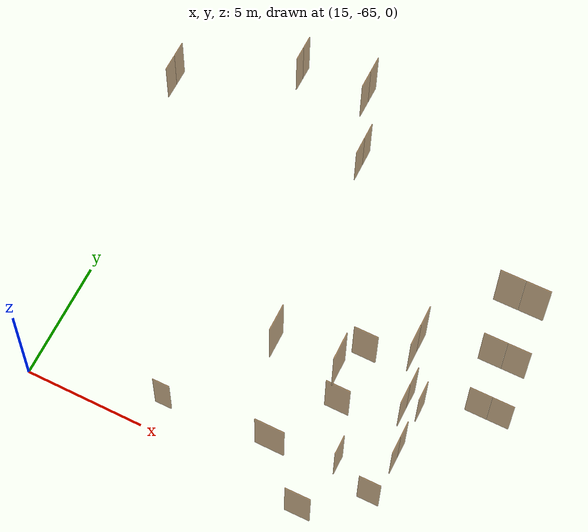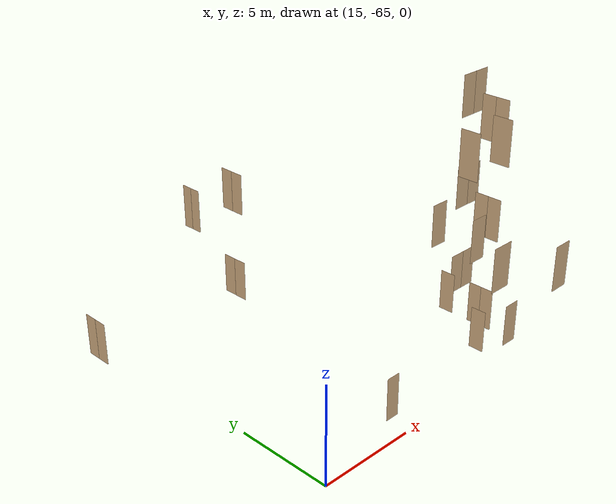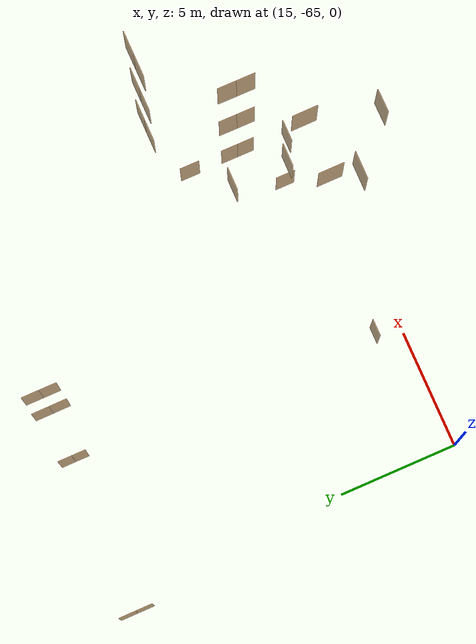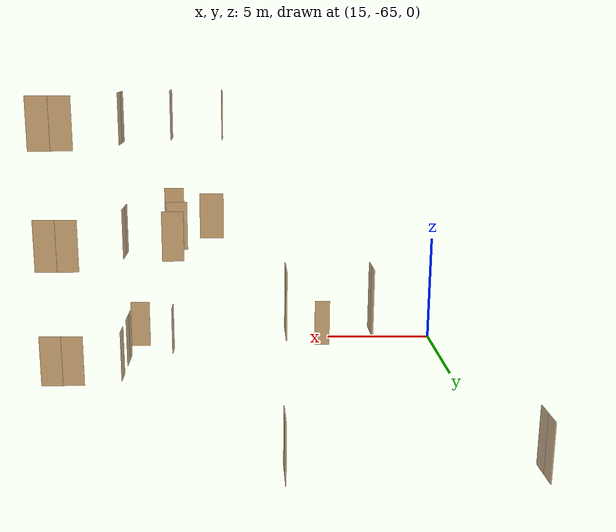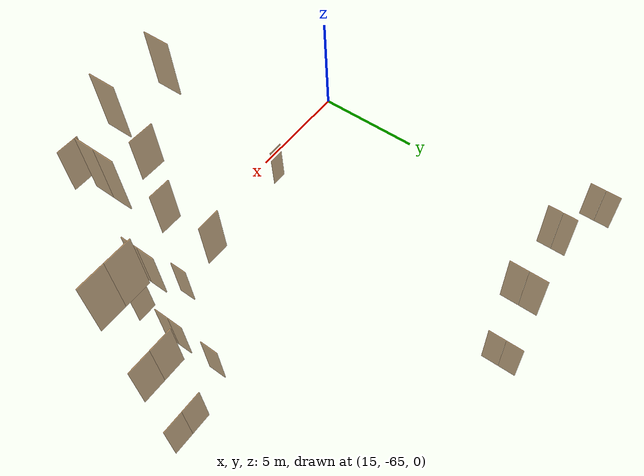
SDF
<sdf version="1.7">
 <world name="sim_world">
  <model name="p2">
   <pose>13.961230778347318 -50.64991037302602 0.0 0 0 1.5707963267948966</pose>
   <link name="right">
    <pose>0.360861530028739 0 1.11 0 0 0</pose>
    <visual name="right_visual">
     <geometry><box><size>0.711723060057478 0.03 2.2</size></box></geometry>
     <material>
      <ambient>0.5 0.25 0 0.6</ambient>
      <diffuse>0.5 0.25 0 0.6</diffuse>
      <pbr><metal><metalness>0.0</metalness></metal></pbr>
     </material>
    </visual>
    <collision name="right_collision">
     <geometry><box><size>0.711723060057478 0.03 2.2</size></box></geometry>
     <surface><contact><collide_bitmask>0x02</collide_bitmask></contact></surface>
    </collision>
    <inertial>
     <mass>50.0</mass>
     <inertia><ixx>20.17041666666667</ixx><iyy>22.27729047590659</iyy><izz>2.1143738092399187</izz></inertia>
    </inertial>
   </link>
   <joint name="right_joint" type="revolute">
    <parent>world</parent>
    <child>right</child>
    <axis><xyz>0 0 -1</xyz><limit><lower>0</lower><upper>1.57</upper></limit></axis>
    <pose>0.360861530028739 0 0 0 0 0</pose>
   </joint>
   <link name="left">
    <pose>-0.360861530028739 0 1.11 0 0 0</pose>
    <visual name="left_visual">
     <geometry><box><size>0.711723060057478 0.03 2.2</size></box></geometry>
     <material>
      <ambient>0.5 0.25 0 0.6</ambient>
      <diffuse>0.5 0.25 0 0.6</diffuse>
      <pbr><metal><metalness>0.0</metalness></metal></pbr>
     </material>
    </visual>
    <collision name="left_collision">
     <geometry><box><size>0.711723060057478 0.03 2.2</size></box></geometry>
     <surface><contact><collide_bitmask>0x02</collide_bitmask></contact></surface>
    </collision>
    <inertial>
     <mass>50.0</mass>
     <inertia><ixx>20.17041666666667</ixx><iyy>22.27729047590659</iyy><izz>2.1143738092399187</izz></inertia>
    </inertial>
   </link>
   <joint name="left_joint" type="revolute">
    <parent>world</parent>
    <child>left</child>
    <axis><xyz>0 0 -1</xyz><limit><lower>-1.57</lower><upper>0</upper></limit></axis>
    <pose>-0.360861530028739 0 0 0 0 0</pose>
   </joint>
   <plugin name="register_component" filename="libregister_component.so">
    <component name="Door">
     <v_max_door>0.5</v_max_door>
     <a_max_door>0.3</a_max_door>
     <a_nom_door>0.15</a_nom_door>
     <dx_min_door>0.01</dx_min_door>
     <f_max_door>500.0</f_max_door>
     <ros_interface>true</ros_interface>
     <door name="p2" type="DoubleSwingDoor" left_joint_name="left_joint" right_joint_name="right_joint"/>
    </component>
   </plugin>
  </model>
  <model name="p3">
   <pose>22.712949245948284 -50.70411987792958 0.0 0 0 1.5778150838583305</pose>
   <link name="right">
    <pose>0.3815092045091061 0 1.11 0 0 0</pose>
    <visual name="right_visual">
     <geometry><box><size>0.7530184090182122 0.03 2.2</size></box></geometry>
     <material>
      <ambient>0.5 0.25 0 0.6</ambient>
      <diffuse>0.5 0.25 0 0.6</diffuse>
      <pbr><metal><metalness>0.0</metalness></metal></pbr>
     </material>
    </visual>
    <collision name="right_collision">
     <geometry><box><size>0.7530184090182122 0.03 2.2</size></box></geometry>
     <surface><contact><collide_bitmask>0x02</collide_bitmask></contact></surface>
    </collision>
    <inertial>
     <mass>50.0</mass>
     <inertia><ixx>20.17041666666667</ixx><iyy>22.529319684668</iyy><izz>2.3664030180013316</izz></inertia>
    </inertial>
   </link>
   <joint name="right_joint" type="revolute">
    <parent>world</parent>
    <child>right</child>
    <axis><xyz>0 0 -1</xyz><limit><lower>0</lower><upper>1.57</upper></limit></axis>
    <pose>0.3815092045091061 0 0 0 0 0</pose>
   </joint>
   <link name="left">
    <pose>-0.3815092045091061 0 1.11 0 0 0</pose>
    <visual name="left_visual">
     <geometry><box><size>0.7530184090182122 0.03 2.2</size></box></geometry>
     <material>
      <ambient>0.5 0.25 0 0.6</ambient>
      <diffuse>0.5 0.25 0 0.6</diffuse>
      <pbr><metal><metalness>0.0</metalness></metal></pbr>
     </material>
    </visual>
    <collision name="left_collision">
     <geometry><box><size>0.7530184090182122 0.03 2.2</size></box></geometry>
     <surface><contact><collide_bitmask>0x02</collide_bitmask></contact></surface>
    </collision>
    <inertial>
     <mass>50.0</mass>
     <inertia><ixx>20.17041666666667</ixx><iyy>22.529319684668</iyy><izz>2.3664030180013316</izz></inertia>
    </inertial>
   </link>
   <joint name="left_joint" type="revolute">
    <parent>world</parent>
    <child>left</child>
    <axis><xyz>0 0 -1</xyz><limit><lower>-1.57</lower><upper>0</upper></limit></axis>
    <pose>-0.3815092045091061 0 0 0 0 0</pose>
   </joint>
   <plugin name="register_component" filename="libregister_component.so">
    <component name="Door">
     <v_max_door>0.5</v_max_door>
     <a_max_door>0.3</a_max_door>
     <a_nom_door>0.15</a_nom_door>
     <dx_min_door>0.01</dx_min_door>
     <f_max_door>500.0</f_max_door>
     <ros_interface>true</ros_interface>
     <door name="p3" type="DoubleSwingDoor" left_joint_name="left_joint" right_joint_name="right_joint"/>
    </component>
   </plugin>
  </model>
  <model name="p16">
   <pose>31.855433913069263 -58.77063642558743 0.0 0 0 0.0</pose>
   <link name="right">
    <pose>0.4618529821338617 0 1.11 0 0 0</pose>
    <visual name="right_visual">
     <geometry><box><size>0.9137059642677234 0.03 2.2</size></box></geometry>
     <material>
      <ambient>0.5 0.25 0 0.6</ambient>
      <diffuse>0.5 0.25 0 0.6</diffuse>
      <pbr><metal><metalness>0.0</metalness></metal></pbr>
     </material>
    </visual>
    <collision name="right_collision">
     <geometry><box><size>0.9137059642677234 0.03 2.2</size></box></geometry>
     <surface><contact><collide_bitmask>0x02</collide_bitmask></contact></surface>
    </collision>
    <inertial>
     <mass>50.0</mass>
     <inertia><ixx>20.17041666666667</ixx><iyy>23.645244121410048</iyy><izz>3.4823274547433765</izz></inertia>
    </inertial>
   </link>
   <joint name="right_joint" type="revolute">
    <parent>world</parent>
    <child>right</child>
    <axis><xyz>0 0 -1</xyz><limit><lower>0</lower><upper>1.57</upper></limit></axis>
    <pose>0.4618529821338617 0 0 0 0 0</pose>
   </joint>
   <link name="left">
    <pose>-0.4618529821338617 0 1.11 0 0 0</pose>
    <visual name="left_visual">
     <geometry><box><size>0.9137059642677234 0.03 2.2</size></box></geometry>
     <material>
      <ambient>0.5 0.25 0 0.6</ambient>
      <diffuse>0.5 0.25 0 0.6</diffuse>
      <pbr><metal><metalness>0.0</metalness></metal></pbr>
     </material>
    </visual>
    <collision name="left_collision">
     <geometry><box><size>0.9137059642677234 0.03 2.2</size></box></geometry>
     <surface><contact><collide_bitmask>0x02</collide_bitmask></contact></surface>
    </collision>
    <inertial>
     <mass>50.0</mass>
     <inertia><ixx>20.17041666666667</ixx><iyy>23.645244121410048</iyy><izz>3.4823274547433765</izz></inertia>
    </inertial>
   </link>
   <joint name="left_joint" type="revolute">
    <parent>world</parent>
    <child>left</child>
    <axis><xyz>0 0 -1</xyz><limit><lower>-1.57</lower><upper>0</upper></limit></axis>
    <pose>-0.4618529821338617 0 0 0 0 0</pose>
   </joint>
   <plugin name="register_component" filename="libregister_component.so">
    <component name="Door">
     <v_max_door>0.5</v_max_door>
     <a_max_door>0.3</a_max_door>
     <a_nom_door>0.15</a_nom_door>
     <dx_min_door>0.01</dx_min_door>
     <f_max_door>500.0</f_max_door>
     <ros_interface>true</ros_interface>
     <door name="p16" type="DoubleSwingDoor" left_joint_name="left_joint" right_joint_name="right_joint"/>
    </component>
   </plugin>
  </model>
  <model name="p17">
   <pose>29.4247281562028 -59.68374270391993 0.0 0 0 -1.5707963267948966</pose>
   <link name="right">
    <pose>0 0 1.11 0 0 0</pose>
    <visual name="right_visual">
     <geometry><box><size>0.8288195905306546 0.03 2.2</size></box></geometry>
     <material>
      <ambient>0.5 0.25 0 0.6</ambient>
      <diffuse>0.5 0.25 0 0.6</diffuse>
      <pbr><metal><metalness>0.0</metalness></metal></pbr>
     </material>
    </visual>
    <collision name="right_collision">
     <geometry><box><size>0.8288195905306546 0.03 2.2</size></box></geometry>
     <surface><contact><collide_bitmask>0x02</collide_bitmask></contact></surface>
    </collision>
    <inertial>
     <mass>50.0</mass>
     <inertia><ixx>20.17041666666667</ixx><iyy>23.028924640197513</iyy><izz>2.8660079735308415</izz></inertia>
    </inertial>
   </link>
   <joint name="right_joint" type="revolute">
    <parent>world</parent>
    <child>right</child>
    <axis><xyz>0 0 1</xyz><limit><lower>0</lower><upper>1.57</upper></limit></axis>
    <pose>0.4194097952653273 0 0 0 0 0</pose>
   </joint>
   <plugin name="register_component" filename="libregister_component.so">
    <component name="Door">
     <v_max_door>0.5</v_max_door>
     <a_max_door>0.3</a_max_door>
     <a_nom_door>0.15</a_nom_door>
     <dx_min_door>0.01</dx_min_door>
     <f_max_door>500.0</f_max_door>
     <ros_interface>true</ros_interface>
     <door name="p17" type="SwingDoor" left_joint_name="empty_joint" right_joint_name="right_joint"/>
    </component>
   </plugin>
  </model>
  <model name="p18">
   <pose>29.4247281562028 -61.7862359633789 0.0 0 0 -1.5707963267948966</pose>
   <link name="right">
    <pose>0.356167224674822 0 1.11 0 0 0</pose>
    <visual name="right_visual">
     <geometry><box><size>0.702334449349644 0.03 2.2</size></box></geometry>
     <material>
      <ambient>0.5 0.25 0 0.6</ambient>
      <diffuse>0.5 0.25 0 0.6</diffuse>
      <pbr><metal><metalness>0.0</metalness></metal></pbr>
     </material>
    </visual>
    <collision name="right_collision">
     <geometry><box><size>0.702334449349644 0.03 2.2</size></box></geometry>
     <surface><contact><collide_bitmask>0x02</collide_bitmask></contact></surface>
    </collision>
    <inertial>
     <mass>50.0</mass>
     <inertia><ixx>20.17041666666667</ixx><iyy>22.221973661430283</iyy><izz>2.059056994763615</izz></inertia>
    </inertial>
   </link>
   <joint name="right_joint" type="revolute">
    <parent>world</parent>
    <child>right</child>
    <axis><xyz>0 0 -1</xyz><limit><lower>0</lower><upper>1.57</upper></limit></axis>
    <pose>0.356167224674822 0 0 0 0 0</pose>
   </joint>
   <link name="left">
    <pose>-0.356167224674822 0 1.11 0 0 0</pose>
    <visual name="left_visual">
     <geometry><box><size>0.702334449349644 0.03 2.2</size></box></geometry>
     <material>
      <ambient>0.5 0.25 0 0.6</ambient>
      <diffuse>0.5 0.25 0 0.6</diffuse>
      <pbr><metal><metalness>0.0</metalness></metal></pbr>
     </material>
    </visual>
    <collision name="left_collision">
     <geometry><box><size>0.702334449349644 0.03 2.2</size></box></geometry>
     <surface><contact><collide_bitmask>0x02</collide_bitmask></contact></surface>
    </collision>
    <inertial>
     <mass>50.0</mass>
     <inertia><ixx>20.17041666666667</ixx><iyy>22.221973661430283</iyy><izz>2.059056994763615</izz></inertia>
    </inertial>
   </link>
   <joint name="left_joint" type="revolute">
    <parent>world</parent>
    <child>left</child>
    <axis><xyz>0 0 -1</xyz><limit><lower>-1.57</lower><upper>0</upper></limit></axis>
    <pose>-0.356167224674822 0 0 0 0 0</pose>
   </joint>
   <plugin name="register_component" filename="libregister_component.so">
    <component name="Door">
     <v_max_door>0.5</v_max_door>
     <a_max_door>0.3</a_max_door>
     <a_nom_door>0.15</a_nom_door>
     <dx_min_door>0.01</dx_min_door>
     <f_max_door>500.0</f_max_door>
     <ros_interface>true</ros_interface>
     <door name="p18" type="DoubleSwingDoor" left_joint_name="left_joint" right_joint_name="right_joint"/>
    </component>
   </plugin>
  </model>
  <model name="p25">
   <pose>27.526317738733688 -63.0634647862286 0.0 0 0 -1.5707963267948966</pose>
   <link name="right">
    <pose>0 0 1.11 0 0 0</pose>
    <visual name="right_visual">
     <geometry><box><size>0.8038869959408623 0.03 2.2</size></box></geometry>
     <material>
      <ambient>0.5 0.25 0 0.6</ambient>
      <diffuse>0.5 0.25 0 0.6</diffuse>
      <pbr><metal><metalness>0.0</metalness></metal></pbr>
     </material>
    </visual>
    <collision name="right_collision">
     <geometry><box><size>0.8038869959408623 0.03 2.2</size></box></geometry>
     <surface><contact><collide_bitmask>0x02</collide_bitmask></contact></surface>
    </collision>
    <inertial>
     <mass>50.0</mass>
     <inertia><ixx>20.17041666666667</ixx><iyy>22.85930959267844</iyy><izz>2.6963929260117667</izz></inertia>
    </inertial>
   </link>
   <joint name="right_joint" type="revolute">
    <parent>world</parent>
    <child>right</child>
    <axis><xyz>0 0 1</xyz><limit><lower>0</lower><upper>1.57</upper></limit></axis>
    <pose>0.40694349797043117 0 0 0 0 0</pose>
   </joint>
   <plugin name="register_component" filename="libregister_component.so">
    <component name="Door">
     <v_max_door>0.5</v_max_door>
     <a_max_door>0.3</a_max_door>
     <a_nom_door>0.15</a_nom_door>
     <dx_min_door>0.01</dx_min_door>
     <f_max_door>500.0</f_max_door>
     <ros_interface>true</ros_interface>
     <door name="p25" type="SwingDoor" left_joint_name="empty_joint" right_joint_name="right_joint"/>
    </component>
   </plugin>
  </model>
  <model name="p26">
   <pose>29.149069657195362 -63.85273028947295 0.0 0 0 0.0009812095168236176</pose>
   <link name="right">
    <pose>0 0 1.11 0 0 0</pose>
    <visual name="right_visual">
     <geometry><box><size>0.8958847061759335 0.03 2.2</size></box></geometry>
     <material>
      <ambient>0.5 0.25 0 0.6</ambient>
      <diffuse>0.5 0.25 0 0.6</diffuse>
      <pbr><metal><metalness>0.0</metalness></metal></pbr>
     </material>
    </visual>
    <collision name="right_collision">
     <geometry><box><size>0.8958847061759335 0.03 2.2</size></box></geometry>
     <surface><contact><collide_bitmask>0x02</collide_bitmask></contact></surface>
    </collision>
    <inertial>
     <mass>50.0</mass>
     <inertia><ixx>20.17041666666667</ixx><iyy>23.510872528166416</iyy><izz>3.347955861499745</izz></inertia>
    </inertial>
   </link>
   <joint name="right_joint" type="revolute">
    <parent>world</parent>
    <child>right</child>
    <axis><xyz>0 0 1</xyz><limit><lower>0</lower><upper>1.57</upper></limit></axis>
    <pose>0.45294235308796676 0 0 0 0 0</pose>
   </joint>
   <plugin name="register_component" filename="libregister_component.so">
    <component name="Door">
     <v_max_door>0.5</v_max_door>
     <a_max_door>0.3</a_max_door>
     <a_nom_door>0.15</a_nom_door>
     <dx_min_door>0.01</dx_min_door>
     <f_max_door>500.0</f_max_door>
     <ros_interface>true</ros_interface>
     <door name="p26" type="SwingDoor" left_joint_name="empty_joint" right_joint_name="right_joint"/>
    </component>
   </plugin>
  </model>
  <model name="p27">
   <pose>20.389173654113968 -63.85228585819684 0.0 0 0 3.141592653589793</pose>
   <link name="right">
    <pose>0 0 1.11 0 0 0</pose>
    <visual name="right_visual">
     <geometry><box><size>0.714245207549405 0.03 2.2</size></box></geometry>
     <material>
      <ambient>0.5 0.25 0 0.6</ambient>
      <diffuse>0.5 0.25 0 0.6</diffuse>
      <pbr><metal><metalness>0.0</metalness></metal></pbr>
     </material>
    </visual>
    <collision name="right_collision">
     <geometry><box><size>0.714245207549405 0.03 2.2</size></box></geometry>
     <surface><contact><collide_bitmask>0x02</collide_bitmask></contact></surface>
    </collision>
    <inertial>
     <mass>50.0</mass>
     <inertia><ixx>20.17041666666667</ixx><iyy>22.292275902113726</iyy><izz>2.129359235447053</izz></inertia>
    </inertial>
   </link>
   <joint name="right_joint" type="revolute">
    <parent>world</parent>
    <child>right</child>
    <axis><xyz>0 0 -1</xyz><limit><lower>0</lower><upper>1.57</upper></limit></axis>
    <pose>0.3621226037747025 0 0 0 0 0</pose>
   </joint>
   <plugin name="register_component" filename="libregister_component.so">
    <component name="Door">
     <v_max_door>0.5</v_max_door>
     <a_max_door>0.3</a_max_door>
     <a_nom_door>0.15</a_nom_door>
     <dx_min_door>0.01</dx_min_door>
     <f_max_door>500.0</f_max_door>
     <ros_interface>true</ros_interface>
     <door name="p27" type="SwingDoor" left_joint_name="empty_joint" right_joint_name="right_joint"/>
    </component>
   </plugin>
  </model>
  <model name="puerta1">
   <pose>27.203402092229066 -62.923515091585465 5.0 0 0 3.136856913983824</pose>
   <link name="right">
    <pose>0 0 1.11 0 0 0</pose>
    <visual name="right_visual">
     <geometry><box><size>0.944663312590067 0.03 2.2</size></box></geometry>
     <material>
      <ambient>0.5 0.25 0 0.6</ambient>
      <diffuse>0.5 0.25 0 0.6</diffuse>
      <pbr><metal><metalness>0.0</metalness></metal></pbr>
     </material>
    </visual>
    <collision name="right_collision">
     <geometry><box><size>0.944663312590067 0.03 2.2</size></box></geometry>
     <surface><contact><collide_bitmask>0x02</collide_bitmask></contact></surface>
    </collision>
    <inertial>
     <mass>50.0</mass>
     <inertia><ixx>20.17041666666667</ixx><iyy>23.884953225640164</iyy><izz>3.7220365589734943</izz></inertia>
    </inertial>
   </link>
   <joint name="right_joint" type="revolute">
    <parent>world</parent>
    <child>right</child>
    <axis><xyz>0 0 -1</xyz><limit><lower>0</lower><upper>1.57</upper></limit></axis>
    <pose>0.4773316562950335 0 0 0 0 0</pose>
   </joint>
   <plugin name="register_component" filename="libregister_component.so">
    <component name="Door">
     <v_max_door>0.5</v_max_door>
     <a_max_door>0.3</a_max_door>
     <a_nom_door>0.15</a_nom_door>
     <dx_min_door>0.01</dx_min_door>
     <f_max_door>500.0</f_max_door>
     <ros_interface>true</ros_interface>
     <door name="puerta1" type="SwingDoor" left_joint_name="empty_joint" right_joint_name="right_joint"/>
    </component>
   </plugin>
  </model>
  <model name="puerta26">
   <pose>31.843669759259754 -58.78062009169729 5.0 0 0 0.003306508431330928</pose>
   <link name="right">
    <pose>0.4563372136573314 0 1.11 0 0 0</pose>
    <visual name="right_visual">
     <geometry><box><size>0.9026744273146627 0.03 2.2</size></box></geometry>
     <material>
      <ambient>0.5 0.25 0 0.6</ambient>
      <diffuse>0.5 0.25 0 0.6</diffuse>
      <pbr><metal><metalness>0.0</metalness></metal></pbr>
     </material>
    </visual>
    <collision name="right_collision">
     <geometry><box><size>0.9026744273146627 0.03 2.2</size></box></geometry>
     <surface><contact><collide_bitmask>0x02</collide_bitmask></contact></surface>
    </collision>
    <inertial>
     <mass>50.0</mass>
     <inertia><ixx>20.17041666666667</ixx><iyy>23.561754673866066</iyy><izz>3.3988380071993936</izz></inertia>
    </inertial>
   </link>
   <joint name="right_joint" type="revolute">
    <parent>world</parent>
    <child>right</child>
    <axis><xyz>0 0 -1</xyz><limit><lower>0</lower><upper>1.57</upper></limit></axis>
    <pose>0.4563372136573314 0 0 0 0 0</pose>
   </joint>
   <link name="left">
    <pose>-0.4563372136573314 0 1.11 0 0 0</pose>
    <visual name="left_visual">
     <geometry><box><size>0.9026744273146627 0.03 2.2</size></box></geometry>
     <material>
      <ambient>0.5 0.25 0 0.6</ambient>
      <diffuse>0.5 0.25 0 0.6</diffuse>
      <pbr><metal><metalness>0.0</metalness></metal></pbr>
     </material>
    </visual>
    <collision name="left_collision">
     <geometry><box><size>0.9026744273146627 0.03 2.2</size></box></geometry>
     <surface><contact><collide_bitmask>0x02</collide_bitmask></contact></surface>
    </collision>
    <inertial>
     <mass>50.0</mass>
     <inertia><ixx>20.17041666666667</ixx><iyy>23.561754673866066</iyy><izz>3.3988380071993936</izz></inertia>
    </inertial>
   </link>
   <joint name="left_joint" type="revolute">
    <parent>world</parent>
    <child>left</child>
    <axis><xyz>0 0 -1</xyz><limit><lower>-1.57</lower><upper>0</upper></limit></axis>
    <pose>-0.4563372136573314 0 0 0 0 0</pose>
   </joint>
   <plugin name="register_component" filename="libregister_component.so">
    <component name="Door">
     <v_max_door>0.5</v_max_door>
     <a_max_door>0.3</a_max_door>
     <a_nom_door>0.15</a_nom_door>
     <dx_min_door>0.01</dx_min_door>
     <f_max_door>500.0</f_max_door>
     <ros_interface>true</ros_interface>
     <door name="puerta26" type="DoubleSwingDoor" left_joint_name="left_joint" right_joint_name="right_joint"/>
    </component>
   </plugin>
  </model>
  <model name="puerta27">
   <pose>29.417938320087877 -61.772271079796994 5.0 0 0 1.5684122612085478</pose>
   <link name="right">
    <pose>0.37447788836961565 0 1.11 0 0 0</pose>
    <visual name="right_visual">
     <geometry><box><size>0.7389557767392313 0.03 2.2</size></box></geometry>
     <material>
      <ambient>0.5 0.25 0 0.6</ambient>
      <diffuse>0.5 0.25 0 0.6</diffuse>
      <pbr><metal><metalness>0.0</metalness></metal></pbr>
     </material>
    </visual>
    <collision name="right_collision">
     <geometry><box><size>0.7389557767392313 0.03 2.2</size></box></geometry>
     <surface><contact><collide_bitmask>0x02</collide_bitmask></contact></surface>
    </collision>
    <inertial>
     <mass>50.0</mass>
     <inertia><ixx>20.17041666666667</ixx><iyy>22.441898499901175</iyy><izz>2.2789818332345027</izz></inertia>
    </inertial>
   </link>
   <joint name="right_joint" type="revolute">
    <parent>world</parent>
    <child>right</child>
    <axis><xyz>0 0 1</xyz><limit><lower>0</lower><upper>1.57</upper></limit></axis>
    <pose>0.37447788836961565 0 0 0 0 0</pose>
   </joint>
   <link name="left">
    <pose>-0.37447788836961565 0 1.11 0 0 0</pose>
    <visual name="left_visual">
     <geometry><box><size>0.7389557767392313 0.03 2.2</size></box></geometry>
     <material>
      <ambient>0.5 0.25 0 0.6</ambient>
      <diffuse>0.5 0.25 0 0.6</diffuse>
      <pbr><metal><metalness>0.0</metalness></metal></pbr>
     </material>
    </visual>
    <collision name="left_collision">
     <geometry><box><size>0.7389557767392313 0.03 2.2</size></box></geometry>
     <surface><contact><collide_bitmask>0x02</collide_bitmask></contact></surface>
    </collision>
    <inertial>
     <mass>50.0</mass>
     <inertia><ixx>20.17041666666667</ixx><iyy>22.441898499901175</iyy><izz>2.2789818332345027</izz></inertia>
    </inertial>
   </link>
   <joint name="left_joint" type="revolute">
    <parent>world</parent>
    <child>left</child>
    <axis><xyz>0 0 1</xyz><limit><lower>-1.57</lower><upper>0</upper></limit></axis>
    <pose>-0.37447788836961565 0 0 0 0 0</pose>
   </joint>
   <plugin name="register_component" filename="libregister_component.so">
    <component name="Door">
     <v_max_door>0.5</v_max_door>
     <a_max_door>0.3</a_max_door>
     <a_nom_door>0.15</a_nom_door>
     <dx_min_door>0.01</dx_min_door>
     <f_max_door>500.0</f_max_door>
     <ros_interface>true</ros_interface>
     <door name="puerta27" type="DoubleSwingDoor" left_joint_name="left_joint" right_joint_name="right_joint"/>
    </component>
   </plugin>
  </model>
  <model name="puerta29">
   <pose>25.721464341358512 -65.3240619741578 5.0 0 0 3.1363670530358823</pose>
   <link name="right">
    <pose>0 0 1.11 0 0 0</pose>
    <visual name="right_visual">
     <geometry><box><size>1.1510895324384596 0.03 2.2</size></box></geometry>
     <material>
      <ambient>0.5 0.25 0 0.6</ambient>
      <diffuse>0.5 0.25 0 0.6</diffuse>
      <pbr><metal><metalness>0.0</metalness></metal></pbr>
     </material>
    </visual>
    <collision name="right_collision">
     <geometry><box><size>1.1510895324384596 0.03 2.2</size></box></geometry>
     <surface><contact><collide_bitmask>0x02</collide_bitmask></contact></surface>
    </collision>
    <inertial>
     <mass>50.0</mass>
     <inertia><ixx>20.17041666666667</ixx><iyy>25.687529632039137</iyy><izz>5.524612965372465</izz></inertia>
    </inertial>
   </link>
   <joint name="right_joint" type="revolute">
    <parent>world</parent>
    <child>right</child>
    <axis><xyz>0 0 1</xyz><limit><lower>0</lower><upper>1.57</upper></limit></axis>
    <pose>0.5805447662192298 0 0 0 0 0</pose>
   </joint>
   <plugin name="register_component" filename="libregister_component.so">
    <component name="Door">
     <v_max_door>0.5</v_max_door>
     <a_max_door>0.3</a_max_door>
     <a_nom_door>0.15</a_nom_door>
     <dx_min_door>0.01</dx_min_door>
     <f_max_door>500.0</f_max_door>
     <ros_interface>true</ros_interface>
     <door name="puerta29" type="SwingDoor" left_joint_name="empty_joint" right_joint_name="right_joint"/>
    </component>
   </plugin>
  </model>
  <model name="puerta32">
   <pose>27.68105636818171 -67.10139702671245 5.0 0 0 -3.133944164561173</pose>
   <link name="right">
    <pose>0 0 1.11 0 0 0</pose>
    <visual name="right_visual">
     <geometry><box><size>0.9684817926357198 0.03 2.2</size></box></geometry>
     <material>
      <ambient>0.5 0.25 0 0.6</ambient>
      <diffuse>0.5 0.25 0 0.6</diffuse>
      <pbr><metal><metalness>0.0</metalness></metal></pbr>
     </material>
    </visual>
    <collision name="right_collision">
     <geometry><box><size>0.9684817926357198 0.03 2.2</size></box></geometry>
     <surface><contact><collide_bitmask>0x02</collide_bitmask></contact></surface>
    </collision>
    <inertial>
     <mass>50.0</mass>
     <inertia><ixx>20.17041666666667</ixx><iyy>24.074820761112075</iyy><izz>3.911904094445406</izz></inertia>
    </inertial>
   </link>
   <joint name="right_joint" type="revolute">
    <parent>world</parent>
    <child>right</child>
    <axis><xyz>0 0 1</xyz><limit><lower>0</lower><upper>1.57</upper></limit></axis>
    <pose>0.4892408963178599 0 0 0 0 0</pose>
   </joint>
   <plugin name="register_component" filename="libregister_component.so">
    <component name="Door">
     <v_max_door>0.5</v_max_door>
     <a_max_door>0.3</a_max_door>
     <a_nom_door>0.15</a_nom_door>
     <dx_min_door>0.01</dx_min_door>
     <f_max_door>500.0</f_max_door>
     <ros_interface>true</ros_interface>
     <door name="puerta32" type="SwingDoor" left_joint_name="empty_joint" right_joint_name="right_joint"/>
    </component>
   </plugin>
  </model>
  <model name="puerta33">
   <pose>27.20046058260614 -60.621394283353226 5.0 0 0 3.1365579315966325</pose>
   <link name="right">
    <pose>0 0 1.11 0 0 0</pose>
    <visual name="right_visual">
     <geometry><box><size>0.949620873109507 0.03 2.2</size></box></geometry>
     <material>
      <ambient>0.5 0.25 0 0.6</ambient>
      <diffuse>0.5 0.25 0 0.6</diffuse>
      <pbr><metal><metalness>0.0</metalness></metal></pbr>
     </material>
    </visual>
    <collision name="right_collision">
     <geometry><box><size>0.949620873109507 0.03 2.2</size></box></geometry>
     <surface><contact><collide_bitmask>0x02</collide_bitmask></contact></surface>
    </collision>
    <inertial>
     <mass>50.0</mass>
     <inertia><ixx>20.17041666666667</ixx><iyy>23.924082511021933</iyy><izz>3.7611658443552605</izz></inertia>
    </inertial>
   </link>
   <joint name="right_joint" type="revolute">
    <parent>world</parent>
    <child>right</child>
    <axis><xyz>0 0 1</xyz><limit><lower>0</lower><upper>1.57</upper></limit></axis>
    <pose>0.4798104365547535 0 0 0 0 0</pose>
   </joint>
   <plugin name="register_component" filename="libregister_component.so">
    <component name="Door">
     <v_max_door>0.5</v_max_door>
     <a_max_door>0.3</a_max_door>
     <a_nom_door>0.15</a_nom_door>
     <dx_min_door>0.01</dx_min_door>
     <f_max_door>500.0</f_max_door>
     <ros_interface>true</ros_interface>
     <door name="puerta33" type="SwingDoor" left_joint_name="empty_joint" right_joint_name="right_joint"/>
    </component>
   </plugin>
  </model>
  <model name="puerta37">
   <pose>19.95462908395141 -50.89202115302129 5.0 0 0 -1.5703882011954649</pose>
   <link name="right">
    <pose>0.2831785891347878 0 1.11 0 0 0</pose>
    <visual name="right_visual">
     <geometry><box><size>0.5563571782695755 0.03 2.2</size></box></geometry>
     <material>
      <ambient>0.5 0.25 0 0.6</ambient>
      <diffuse>0.5 0.25 0 0.6</diffuse>
      <pbr><metal><metalness>0.0</metalness></metal></pbr>
     </material>
    </visual>
    <collision name="right_collision">
     <geometry><box><size>0.5563571782695755 0.03 2.2</size></box></geometry>
     <surface><contact><collide_bitmask>0x02</collide_bitmask></contact></surface>
    </collision>
    <inertial>
     <mass>50.0</mass>
     <inertia><ixx>20.17041666666667</ixx><iyy>21.45638879088369</iyy><izz>1.293472124217018</izz></inertia>
    </inertial>
   </link>
   <joint name="right_joint" type="revolute">
    <parent>world</parent>
    <child>right</child>
    <axis><xyz>0 0 1</xyz><limit><lower>0</lower><upper>1.57</upper></limit></axis>
    <pose>0.2831785891347878 0 0 0 0 0</pose>
   </joint>
   <link name="left">
    <pose>-0.2831785891347878 0 1.11 0 0 0</pose>
    <visual name="left_visual">
     <geometry><box><size>0.5563571782695755 0.03 2.2</size></box></geometry>
     <material>
      <ambient>0.5 0.25 0 0.6</ambient>
      <diffuse>0.5 0.25 0 0.6</diffuse>
      <pbr><metal><metalness>0.0</metalness></metal></pbr>
     </material>
    </visual>
    <collision name="left_collision">
     <geometry><box><size>0.5563571782695755 0.03 2.2</size></box></geometry>
     <surface><contact><collide_bitmask>0x02</collide_bitmask></contact></surface>
    </collision>
    <inertial>
     <mass>50.0</mass>
     <inertia><ixx>20.17041666666667</ixx><iyy>21.45638879088369</iyy><izz>1.293472124217018</izz></inertia>
    </inertial>
   </link>
   <joint name="left_joint" type="revolute">
    <parent>world</parent>
    <child>left</child>
    <axis><xyz>0 0 1</xyz><limit><lower>-1.57</lower><upper>0</upper></limit></axis>
    <pose>-0.2831785891347878 0 0 0 0 0</pose>
   </joint>
   <plugin name="register_component" filename="libregister_component.so">
    <component name="Door">
     <v_max_door>0.5</v_max_door>
     <a_max_door>0.3</a_max_door>
     <a_nom_door>0.15</a_nom_door>
     <dx_min_door>0.01</dx_min_door>
     <f_max_door>500.0</f_max_door>
     <ros_interface>true</ros_interface>
     <door name="puerta37" type="DoubleSwingDoor" left_joint_name="left_joint" right_joint_name="right_joint"/>
    </component>
   </plugin>
  </model>
  <model name="puerta38">
   <pose>22.71150478021074 -50.72999398862345 5.0 0 0 1.5705960176621467</pose>
   <link name="right">
    <pose>0.3616365209016813 0 1.11 0 0 0</pose>
    <visual name="right_visual">
     <geometry><box><size>0.7132730418033626 0.03 2.2</size></box></geometry>
     <material>
      <ambient>0.5 0.25 0 0.6</ambient>
      <diffuse>0.5 0.25 0 0.6</diffuse>
      <pbr><metal><metalness>0.0</metalness></metal></pbr>
     </material>
    </visual>
    <collision name="right_collision">
     <geometry><box><size>0.7132730418033626 0.03 2.2</size></box></geometry>
     <surface><contact><collide_bitmask>0x02</collide_bitmask></contact></surface>
    </collision>
    <inertial>
     <mass>50.0</mass>
     <inertia><ixx>20.17041666666667</ixx><iyy>22.286493467347594</iyy><izz>2.123576800680923</izz></inertia>
    </inertial>
   </link>
   <joint name="right_joint" type="revolute">
    <parent>world</parent>
    <child>right</child>
    <axis><xyz>0 0 -1</xyz><limit><lower>0</lower><upper>1.57</upper></limit></axis>
    <pose>0.3616365209016813 0 0 0 0 0</pose>
   </joint>
   <link name="left">
    <pose>-0.3616365209016813 0 1.11 0 0 0</pose>
    <visual name="left_visual">
     <geometry><box><size>0.7132730418033626 0.03 2.2</size></box></geometry>
     <material>
      <ambient>0.5 0.25 0 0.6</ambient>
      <diffuse>0.5 0.25 0 0.6</diffuse>
      <pbr><metal><metalness>0.0</metalness></metal></pbr>
     </material>
    </visual>
    <collision name="left_collision">
     <geometry><box><size>0.7132730418033626 0.03 2.2</size></box></geometry>
     <surface><contact><collide_bitmask>0x02</collide_bitmask></contact></surface>
    </collision>
    <inertial>
     <mass>50.0</mass>
     <inertia><ixx>20.17041666666667</ixx><iyy>22.286493467347594</iyy><izz>2.123576800680923</izz></inertia>
    </inertial>
   </link>
   <joint name="left_joint" type="revolute">
    <parent>world</parent>
    <child>left</child>
    <axis><xyz>0 0 -1</xyz><limit><lower>-1.57</lower><upper>0</upper></limit></axis>
    <pose>-0.3616365209016813 0 0 0 0 0</pose>
   </joint>
   <plugin name="register_component" filename="libregister_component.so">
    <component name="Door">
     <v_max_door>0.5</v_max_door>
     <a_max_door>0.3</a_max_door>
     <a_nom_door>0.15</a_nom_door>
     <dx_min_door>0.01</dx_min_door>
     <f_max_door>500.0</f_max_door>
     <ros_interface>true</ros_interface>
     <door name="puerta38" type="DoubleSwingDoor" left_joint_name="left_joint" right_joint_name="right_joint"/>
    </component>
   </plugin>
  </model>
  <model name="puerta113">
   <pose>31.843578543662318 -58.780932862003795 10.0 0 0 0.00330821890821135</pose>
   <link name="right">
    <pose>0.45634254714694655 0 1.11 0 0 0</pose>
    <visual name="right_visual">
     <geometry><box><size>0.9026850942938931 0.03 2.2</size></box></geometry>
     <material>
      <ambient>0.5 0.25 0 0.6</ambient>
      <diffuse>0.5 0.25 0 0.6</diffuse>
      <pbr><metal><metalness>0.0</metalness></metal></pbr>
     </material>
    </visual>
    <collision name="right_collision">
     <geometry><box><size>0.9026850942938931 0.03 2.2</size></box></geometry>
     <surface><contact><collide_bitmask>0x02</collide_bitmask></contact></surface>
    </collision>
    <inertial>
     <mass>50.0</mass>
     <inertia><ixx>20.17041666666667</ixx><iyy>23.56183491441823</iyy><izz>3.3989182477515616</izz></inertia>
    </inertial>
   </link>
   <joint name="right_joint" type="revolute">
    <parent>world</parent>
    <child>right</child>
    <axis><xyz>0 0 -1</xyz><limit><lower>0</lower><upper>1.57</upper></limit></axis>
    <pose>0.45634254714694655 0 0 0 0 0</pose>
   </joint>
   <link name="left">
    <pose>-0.45634254714694655 0 1.11 0 0 0</pose>
    <visual name="left_visual">
     <geometry><box><size>0.9026850942938931 0.03 2.2</size></box></geometry>
     <material>
      <ambient>0.5 0.25 0 0.6</ambient>
      <diffuse>0.5 0.25 0 0.6</diffuse>
      <pbr><metal><metalness>0.0</metalness></metal></pbr>
     </material>
    </visual>
    <collision name="left_collision">
     <geometry><box><size>0.9026850942938931 0.03 2.2</size></box></geometry>
     <surface><contact><collide_bitmask>0x02</collide_bitmask></contact></surface>
    </collision>
    <inertial>
     <mass>50.0</mass>
     <inertia><ixx>20.17041666666667</ixx><iyy>23.56183491441823</iyy><izz>3.3989182477515616</izz></inertia>
    </inertial>
   </link>
   <joint name="left_joint" type="revolute">
    <parent>world</parent>
    <child>left</child>
    <axis><xyz>0 0 -1</xyz><limit><lower>-1.57</lower><upper>0</upper></limit></axis>
    <pose>-0.45634254714694655 0 0 0 0 0</pose>
   </joint>
   <plugin name="register_component" filename="libregister_component.so">
    <component name="Door">
     <v_max_door>0.5</v_max_door>
     <a_max_door>0.3</a_max_door>
     <a_nom_door>0.15</a_nom_door>
     <dx_min_door>0.01</dx_min_door>
     <f_max_door>500.0</f_max_door>
     <ros_interface>true</ros_interface>
     <door name="puerta113" type="DoubleSwingDoor" left_joint_name="left_joint" right_joint_name="right_joint"/>
    </component>
   </plugin>
  </model>
  <model name="puerta114">
   <pose>29.417823870710023 -61.77262296454359 10.0 0 0 1.5684139716854368</pose>
   <link name="right">
    <pose>0.3744822651196749 0 1.11 0 0 0</pose>
    <visual name="right_visual">
     <geometry><box><size>0.7389645302393498 0.03 2.2</size></box></geometry>
     <material>
      <ambient>0.5 0.25 0 0.6</ambient>
      <diffuse>0.5 0.25 0 0.6</diffuse>
      <pbr><metal><metalness>0.0</metalness></metal></pbr>
     </material>
    </visual>
    <collision name="right_collision">
     <geometry><box><size>0.7389645302393498 0.03 2.2</size></box></geometry>
     <surface><contact><collide_bitmask>0x02</collide_bitmask></contact></surface>
    </collision>
    <inertial>
     <mass>50.0</mass>
     <inertia><ixx>20.17041666666667</ixx><iyy>22.441952403966102</iyy><izz>2.279035737299429</izz></inertia>
    </inertial>
   </link>
   <joint name="right_joint" type="revolute">
    <parent>world</parent>
    <child>right</child>
    <axis><xyz>0 0 1</xyz><limit><lower>0</lower><upper>1.57</upper></limit></axis>
    <pose>0.3744822651196749 0 0 0 0 0</pose>
   </joint>
   <link name="left">
    <pose>-0.3744822651196749 0 1.11 0 0 0</pose>
    <visual name="left_visual">
     <geometry><box><size>0.7389645302393498 0.03 2.2</size></box></geometry>
     <material>
      <ambient>0.5 0.25 0 0.6</ambient>
      <diffuse>0.5 0.25 0 0.6</diffuse>
      <pbr><metal><metalness>0.0</metalness></metal></pbr>
     </material>
    </visual>
    <collision name="left_collision">
     <geometry><box><size>0.7389645302393498 0.03 2.2</size></box></geometry>
     <surface><contact><collide_bitmask>0x02</collide_bitmask></contact></surface>
    </collision>
    <inertial>
     <mass>50.0</mass>
     <inertia><ixx>20.17041666666667</ixx><iyy>22.441952403966102</iyy><izz>2.279035737299429</izz></inertia>
    </inertial>
   </link>
   <joint name="left_joint" type="revolute">
    <parent>world</parent>
    <child>left</child>
    <axis><xyz>0 0 1</xyz><limit><lower>-1.57</lower><upper>0</upper></limit></axis>
    <pose>-0.3744822651196749 0 0 0 0 0</pose>
   </joint>
   <plugin name="register_component" filename="libregister_component.so">
    <component name="Door">
     <v_max_door>0.5</v_max_door>
     <a_max_door>0.3</a_max_door>
     <a_nom_door>0.15</a_nom_door>
     <dx_min_door>0.01</dx_min_door>
     <f_max_door>500.0</f_max_door>
     <ros_interface>true</ros_interface>
     <door name="puerta114" type="DoubleSwingDoor" left_joint_name="left_joint" right_joint_name="right_joint"/>
    </component>
   </plugin>
  </model>
  <model name="puerta193">
   <pose>25.110722367177786 -63.60509587549184 10.0 0 0 1.5736285831646675</pose>
   <link name="right">
    <pose>0 0 1.11 0 0 0</pose>
    <visual name="right_visual">
     <geometry><box><size>1.0026732239252825 0.03 2.2</size></box></geometry>
     <material>
      <ambient>0.5 0.25 0 0.6</ambient>
      <diffuse>0.5 0.25 0 0.6</diffuse>
      <pbr><metal><metalness>0.0</metalness></metal></pbr>
     </material>
    </visual>
    <collision name="right_collision">
     <geometry><box><size>1.0026732239252825 0.03 2.2</size></box></geometry>
     <surface><contact><collide_bitmask>0x02</collide_bitmask></contact></surface>
    </collision>
    <inertial>
     <mass>50.0</mass>
     <inertia><ixx>20.17041666666667</ixx><iyy>24.355639974903003</iyy><izz>4.1927233082363315</izz></inertia>
    </inertial>
   </link>
   <joint name="right_joint" type="revolute">
    <parent>world</parent>
    <child>right</child>
    <axis><xyz>0 0 -1</xyz><limit><lower>0</lower><upper>1.57</upper></limit></axis>
    <pose>0.5063366119626412 0 0 0 0 0</pose>
   </joint>
   <plugin name="register_component" filename="libregister_component.so">
    <component name="Door">
     <v_max_door>0.5</v_max_door>
     <a_max_door>0.3</a_max_door>
     <a_nom_door>0.15</a_nom_door>
     <dx_min_door>0.01</dx_min_door>
     <f_max_door>500.0</f_max_door>
     <ros_interface>true</ros_interface>
     <door name="puerta193" type="SwingDoor" left_joint_name="empty_joint" right_joint_name="right_joint"/>
    </component>
   </plugin>
  </model>
  <model name="puerta194">
   <pose>27.407946337014774 -63.59592823269104 10.0 0 0 1.5796606931876542</pose>
   <link name="right">
    <pose>0 0 1.11 0 0 0</pose>
    <visual name="right_visual">
     <geometry><box><size>1.01326514911095 0.03 2.2</size></box></geometry>
     <material>
      <ambient>0.5 0.25 0 0.6</ambient>
      <diffuse>0.5 0.25 0 0.6</diffuse>
      <pbr><metal><metalness>0.0</metalness></metal></pbr>
     </material>
    </visual>
    <collision name="right_collision">
     <geometry><box><size>1.01326514911095 0.03 2.2</size></box></geometry>
     <surface><contact><collide_bitmask>0x02</collide_bitmask></contact></surface>
    </collision>
    <inertial>
     <mass>50.0</mass>
     <inertia><ixx>20.17041666666667</ixx><iyy>24.444609426678486</iyy><izz>4.281692760011815</izz></inertia>
    </inertial>
   </link>
   <joint name="right_joint" type="revolute">
    <parent>world</parent>
    <child>right</child>
    <axis><xyz>0 0 1</xyz><limit><lower>0</lower><upper>1.57</upper></limit></axis>
    <pose>0.511632574555475 0 0 0 0 0</pose>
   </joint>
   <plugin name="register_component" filename="libregister_component.so">
    <component name="Door">
     <v_max_door>0.5</v_max_door>
     <a_max_door>0.3</a_max_door>
     <a_nom_door>0.15</a_nom_door>
     <dx_min_door>0.01</dx_min_door>
     <f_max_door>500.0</f_max_door>
     <ros_interface>true</ros_interface>
     <door name="puerta194" type="SwingDoor" left_joint_name="empty_joint" right_joint_name="right_joint"/>
    </component>
   </plugin>
  </model>
 </world>
</sdf>
